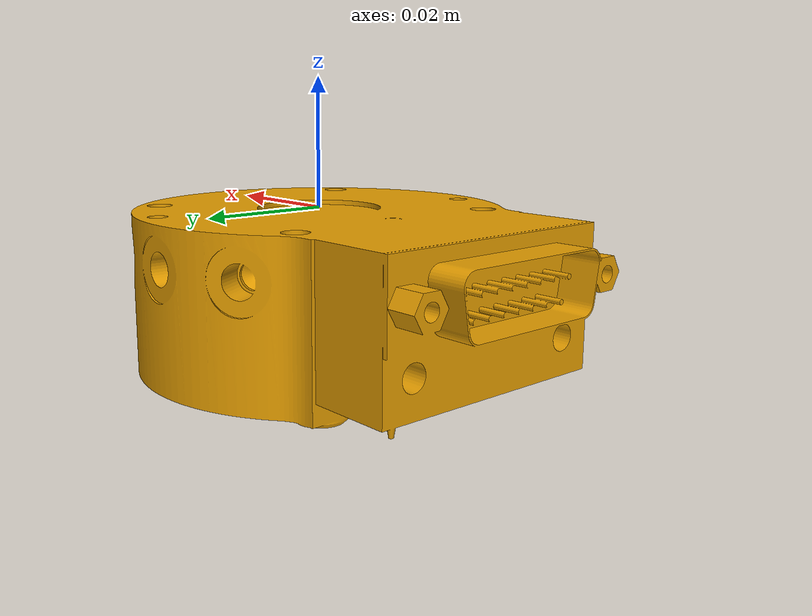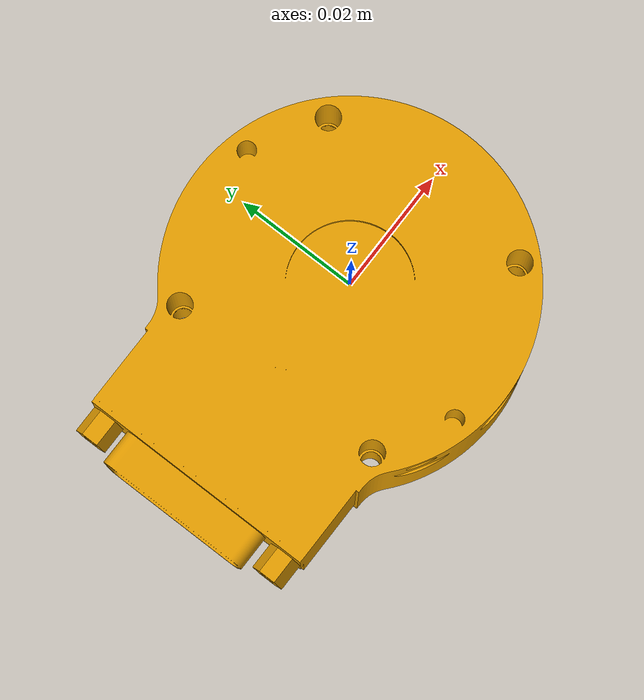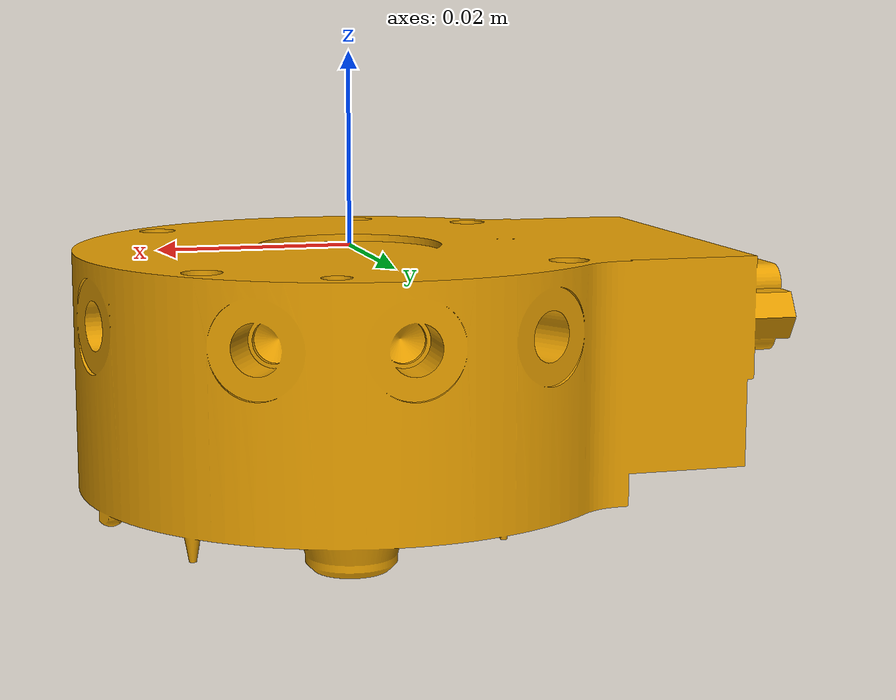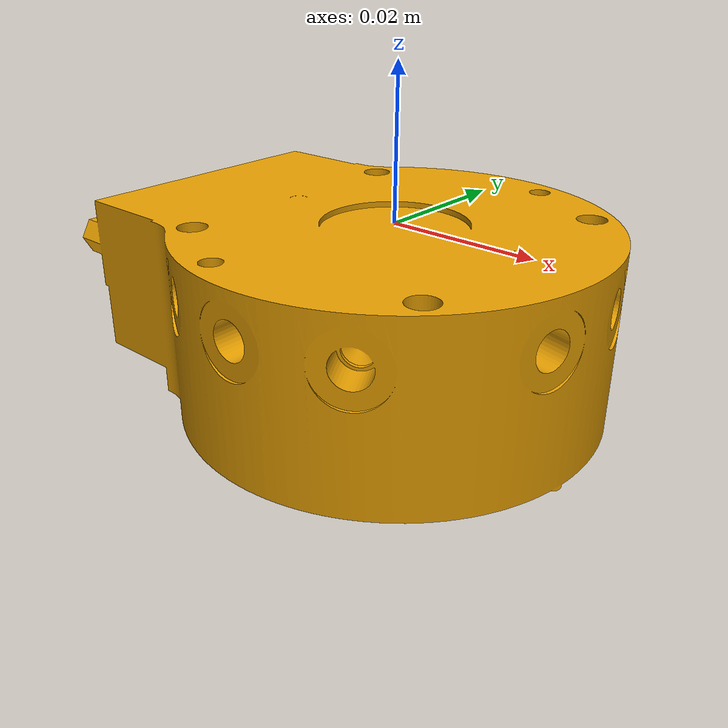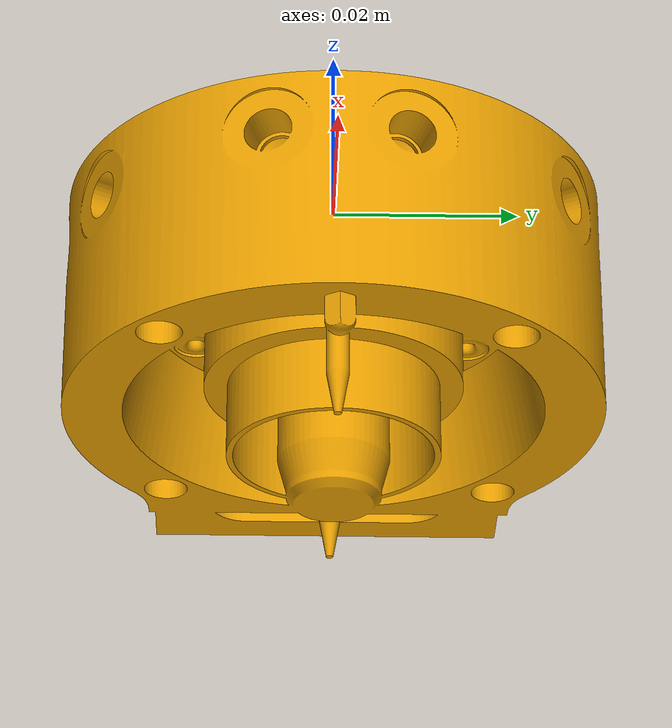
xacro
<?xml version='1.0'?>
<robot xmlns:xacro="http://www.ros.org/wiki/xacro" name="defaults">
<xacro:arg name="tc_id" default="tc_robot_panda1" />
    <link name="$(arg tc_id)">
        <visual>
            <origin rpy="1.57 0 -1.57" xyz=" 0 0 0 "/>
            <geometry>
                <mesh filename="package://reconcycle_description/meshes/tc_robot_side.obj" scale="0.001 0.001 0.001"/>
            </geometry>
        </visual>
        <collision>
            <origin rpy="1.57 0 -1.57" xyz="0.0 0.0 0"/>
            <geometry>
                <mesh filename="package://reconcycle_description/meshes/tc_robot_side.obj" scale ="0.001 0.001 0.001"/>
            </geometry>
        </collision>
        <inertial>
            <origin xyz="0 0 0" rpy="0 0 0"/>
            <mass value="3"/>
            <inertia ixx="3.0" ixy="0.0" ixz="0.0" iyy="3.0" iyz="0.0" izz="3.0"/>
        </inertial>
    </link>
</robot>
